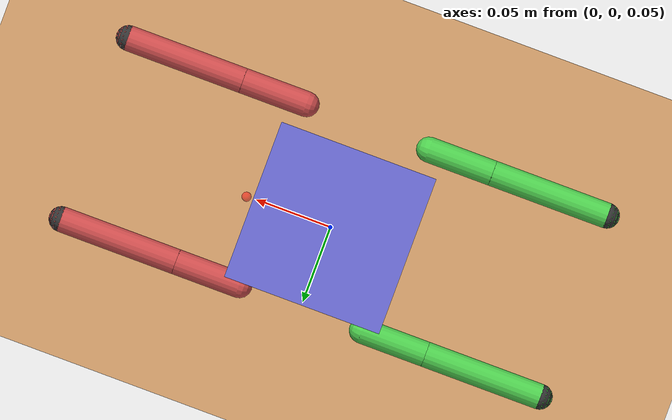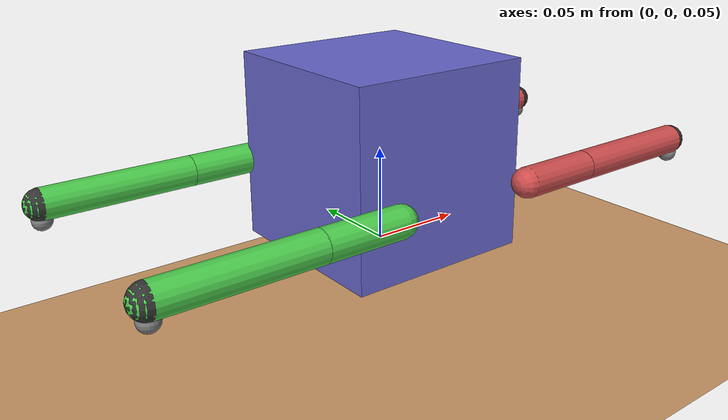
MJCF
<mujoco model="pidog">
  <compiler angle="radian" coordinate="local" inertiafromgeom="false"/>

  <option timestep="0.02" iterations="50" solver="Newton" jacobian="dense">
    <flag warmstart="enable"/>
  </option>

  <default>
    <joint axis="0 0 1" limited="true" damping="0.5" armature="0.01"/>
    <geom contype="1" conaffinity="1" condim="3" friction="0.8 0.005 0.0001"
          rgba="0.8 0.6 0.4 1"/>
    <motor ctrllimited="true" ctrlrange="-1.57 1.57"/>
  </default>

  <asset>
    <texture name="grid" type="2d" builtin="checker" rgb1="0.3 0.3 0.3"
             rgb2="0.4 0.4 0.4" width="512" height="512"/>
    <material name="grid" texture="grid" texrepeat="1 1" reflectance="0.1"/>
  </asset>

  <worldbody>
    <light pos="0 0 1.5" dir="0 0 -1" diffuse="1 1 1"/>
    <geom name="floor" type="plane" size="5 5 0.1" material="grid"/>

    <!-- Main body -->
    <body name="torso" pos="0 0 0.1">
      <freejoint/>
      <inertial pos="0 0 0" mass="0.3"
                diaginertia="3.85e-4 1.60e-4 3.45e-4"/>
      <geom name="torso_geom" type="box" size="0.05 0.05 0.05"
            rgba="0.4 0.4 0.8 1"/>

      <!-- ========== SENSORS ========== -->
      <!-- Camera (320x240, 30Hz) on front of head -->
      <camera name="head_camera" pos="0.06 0 0.02" quat="0.7071 0 0 0.7071" fovy="60"/>

      <!-- Ultrasonic rangefinder site (HC-SR04) - forward facing -->
      <site name="ultrasonic_site" pos="0.055 0 0.015" size="0.003" rgba="1 0 0 0.5"/>

      <!-- Head touch sensor site (on top of head) -->
      <site name="head_touch_site" pos="0.04 0 0.03" size="0.01" rgba="0 1 0 0.5"/>

      <!-- ========== BACK RIGHT LEG ========== -->
      <body name="br_upper" pos="0.0405 -0.06685 -0.009">
        <joint name="br_shoulder" type="hinge" axis="0 1 0"
               range="-1.57 1.57" damping="0.5"/>
        <inertial pos="0.021 0 0" mass="0.010"
                  diaginertia="2.58e-7 2.78e-6 3.03e-6"/>
        <geom name="br_upper_geom" type="capsule" size="0.008"
              fromto="0 0 0 0.042 0 0" rgba="0.8 0.3 0.3 1"/>

        <body name="br_lower" pos="0.042 0 0">
          <joint name="br_knee" type="hinge" axis="0 0 1"
                 range="-1.57 1.57" damping="0.5"/>
          <inertial pos="0.038 0 0" mass="0.010"
                    diaginertia="2.58e-7 2.78e-6 3.03e-6"/>
          <geom name="br_lower_geom" type="capsule" size="0.008"
                fromto="0 0 0 0.076 0 0" rgba="0.8 0.3 0.3 1"/>

          <body name="br_foot" pos="0.076 0 0">
            <inertial pos="0 0 0" mass="0.003"
                      diaginertia="1.64e-8 6.52e-8 7.99e-8"/>
            <geom name="br_foot_geom" type="sphere" size="0.008"
                  rgba="0.2 0.2 0.2 1" friction="1.0 0.005 0.0001"/>
            <site name="br_foot_site" pos="0 0 -0.008" size="0.005"/>
          </body>
        </body>
      </body>

      <!-- ========== FRONT RIGHT LEG ========== -->
      <body name="fr_upper" pos="0.0405 0.05315 -0.009">
        <joint name="fr_shoulder" type="hinge" axis="0 1 0"
               range="-1.57 1.57" damping="0.5"/>
        <inertial pos="0.021 0 0" mass="0.010"
                  diaginertia="2.58e-7 2.78e-6 3.03e-6"/>
        <geom name="fr_upper_geom" type="capsule" size="0.008"
              fromto="0 0 0 0.042 0 0" rgba="0.8 0.3 0.3 1"/>

        <body name="fr_lower" pos="0.042 0 0">
          <joint name="fr_knee" type="hinge" axis="0 0 1"
                 range="-1.57 1.57" damping="0.5"/>
          <inertial pos="0.038 0 0" mass="0.010"
                    diaginertia="2.58e-7 2.78e-6 3.03e-6"/>
          <geom name="fr_lower_geom" type="capsule" size="0.008"
                fromto="0 0 0 0.076 0 0" rgba="0.8 0.3 0.3 1"/>

          <body name="fr_foot" pos="0.076 0 0">
            <inertial pos="0 0 0" mass="0.003"
                      diaginertia="1.64e-8 6.52e-8 7.99e-8"/>
            <geom name="fr_foot_geom" type="sphere" size="0.008"
                  rgba="0.2 0.2 0.2 1" friction="1.0 0.005 0.0001"/>
            <site name="fr_foot_site" pos="0 0 -0.008" size="0.005"/>
          </body>
        </body>
      </body>

      <!-- ========== BACK LEFT LEG ========== -->
      <body name="bl_upper" pos="-0.0405 -0.06685 -0.009">
        <joint name="bl_shoulder" type="hinge" axis="0 1 0"
               range="-1.57 1.57" damping="0.5"/>
        <inertial pos="-0.021 0 0" mass="0.010"
                  diaginertia="2.58e-7 2.78e-6 3.03e-6"/>
        <geom name="bl_upper_geom" type="capsule" size="0.008"
              fromto="0 0 0 -0.042 0 0" rgba="0.3 0.8 0.3 1"/>

        <body name="bl_lower" pos="-0.042 0 0">
          <joint name="bl_knee" type="hinge" axis="0 0 1"
                 range="-1.57 1.57" damping="0.5"/>
          <inertial pos="-0.038 0 0" mass="0.010"
                    diaginertia="2.58e-7 2.78e-6 3.03e-6"/>
          <geom name="bl_lower_geom" type="capsule" size="0.008"
                fromto="0 0 0 -0.076 0 0" rgba="0.3 0.8 0.3 1"/>

          <body name="bl_foot" pos="-0.076 0 0">
            <inertial pos="0 0 0" mass="0.003"
                      diaginertia="1.64e-8 6.52e-8 7.99e-8"/>
            <geom name="bl_foot_geom" type="sphere" size="0.008"
                  rgba="0.2 0.2 0.2 1" friction="1.0 0.005 0.0001"/>
            <site name="bl_foot_site" pos="0 0 -0.008" size="0.005"/>
          </body>
        </body>
      </body>

      <!-- ========== FRONT LEFT LEG ========== -->
      <body name="fl_upper" pos="-0.0405 0.05315 -0.009">
        <joint name="fl_shoulder" type="hinge" axis="0 1 0"
               range="-1.57 1.57" damping="0.5"/>
        <inertial pos="-0.021 0 0" mass="0.010"
                  diaginertia="2.58e-7 2.78e-6 3.03e-6"/>
        <geom name="fl_upper_geom" type="capsule" size="0.008"
              fromto="0 0 0 -0.042 0 0" rgba="0.3 0.8 0.3 1"/>

        <body name="fl_lower" pos="-0.042 0 0">
          <joint name="fl_knee" type="hinge" axis="0 0 1"
                 range="-1.57 1.57" damping="0.5"/>
          <inertial pos="-0.038 0 0" mass="0.010"
                    diaginertia="2.58e-7 2.78e-6 3.03e-6"/>
          <geom name="fl_lower_geom" type="capsule" size="0.008"
                fromto="0 0 0 -0.076 0 0" rgba="0.3 0.8 0.3 1"/>

          <body name="fl_foot" pos="-0.076 0 0">
            <inertial pos="0 0 0" mass="0.003"
                      diaginertia="1.64e-8 6.52e-8 7.99e-8"/>
            <geom name="fl_foot_geom" type="sphere" size="0.008"
                  rgba="0.2 0.2 0.2 1" friction="1.0 0.005 0.0001"/>
            <site name="fl_foot_site" pos="0 0 -0.008" size="0.005"/>
          </body>
        </body>
      </body>
    </body>
  </worldbody>

  <actuator>
    <!-- Position servos with torque limits matching real hardware (0.15 Nm) -->
    <position name="br_shoulder_act" joint="br_shoulder"
              ctrlrange="-1.57 1.57" kp="150" kv="10"/>
    <position name="br_knee_act" joint="br_knee"
              ctrlrange="-1.57 1.57" kp="150" kv="10"/>
    <position name="fr_shoulder_act" joint="fr_shoulder"
              ctrlrange="-1.57 1.57" kp="150" kv="10"/>
    <position name="fr_knee_act" joint="fr_knee"
              ctrlrange="-1.57 1.57" kp="150" kv="10"/>
    <position name="bl_shoulder_act" joint="bl_shoulder"
              ctrlrange="-1.57 1.57" kp="150" kv="10"/>
    <position name="bl_knee_act" joint="bl_knee"
              ctrlrange="-1.57 1.57" kp="150" kv="10"/>
    <position name="fl_shoulder_act" joint="fl_shoulder"
              ctrlrange="-1.57 1.57" kp="150" kv="10"/>
    <position name="fl_knee_act" joint="fl_knee"
              ctrlrange="-1.57 1.57" kp="150" kv="10"/>
  </actuator>

  <sensor>
    <!-- ========== IMU (MPU6050 on body) ========== -->
    <!-- 6-axis IMU: 3-axis accelerometer + 3-axis gyroscope -->
    <framequat name="imu_quat" objtype="body" objname="torso"/>
    <framepos name="imu_pos" objtype="body" objname="torso"/>
    <framelinvel name="imu_linvel" objtype="body" objname="torso"/>
    <frameangvel name="imu_angvel" objtype="body" objname="torso"/>
    <framelinacc name="imu_linacc" objtype="body" objname="torso"/>
    <frameangacc name="imu_angacc" objtype="body" objname="torso"/>

    <!-- ========== Joint Position/Velocity Sensors ========== -->
    <!-- For servo feedback (real servos have position encoders) -->
    <jointpos name="br_shoulder_pos" joint="br_shoulder"/>
    <jointpos name="br_knee_pos" joint="br_knee"/>
    <jointpos name="fr_shoulder_pos" joint="fr_shoulder"/>
    <jointpos name="fr_knee_pos" joint="fr_knee"/>
    <jointpos name="bl_shoulder_pos" joint="bl_shoulder"/>
    <jointpos name="bl_knee_pos" joint="bl_knee"/>
    <jointpos name="fl_shoulder_pos" joint="fl_shoulder"/>
    <jointpos name="fl_knee_pos" joint="fl_knee"/>

    <jointvel name="br_shoulder_vel" joint="br_shoulder"/>
    <jointvel name="br_knee_vel" joint="br_knee"/>
    <jointvel name="fr_shoulder_vel" joint="fr_shoulder"/>
    <jointvel name="fr_knee_vel" joint="fr_knee"/>
    <jointvel name="bl_shoulder_vel" joint="bl_shoulder"/>
    <jointvel name="bl_knee_vel" joint="bl_knee"/>
    <jointvel name="fl_shoulder_vel" joint="fl_shoulder"/>
    <jointvel name="fl_knee_vel" joint="fl_knee"/>

    <!-- ========== Foot Contact/Force Sensors ========== -->
    <!-- Touch sensors on foot pads (for gait phase detection) -->
    <touch name="br_foot_contact" site="br_foot_site"/>
    <touch name="fr_foot_contact" site="fr_foot_site"/>
    <touch name="bl_foot_contact" site="bl_foot_site"/>
    <touch name="fl_foot_contact" site="fl_foot_site"/>

    <!-- ========== Ultrasonic Rangefinder (HC-SR04 simulation) ========== -->
    <!-- Mounted on head, forward-facing (0.02-4m range) -->
    <rangefinder name="ultrasonic" site="ultrasonic_site"/>

    <!-- ========== Head Touch Sensor ========== -->
    <touch name="head_touch" site="head_touch_site"/>
  </sensor>
</mujoco>
